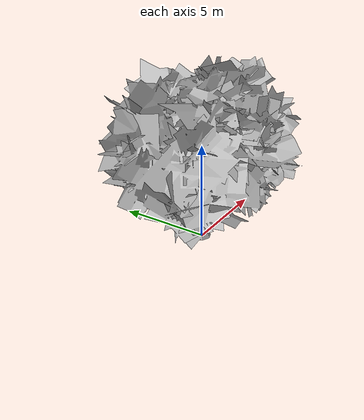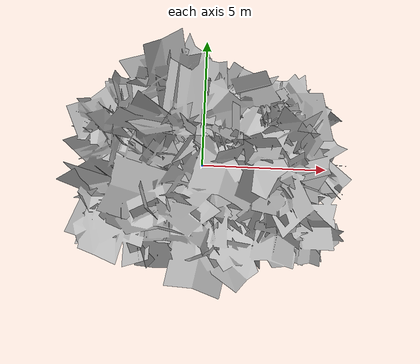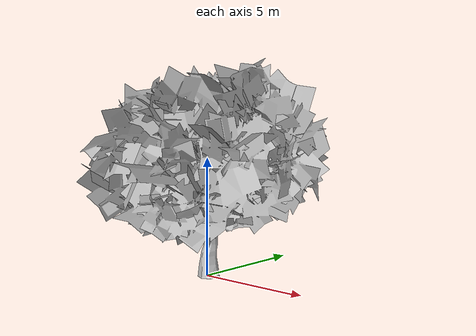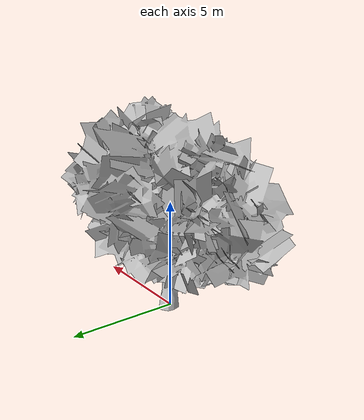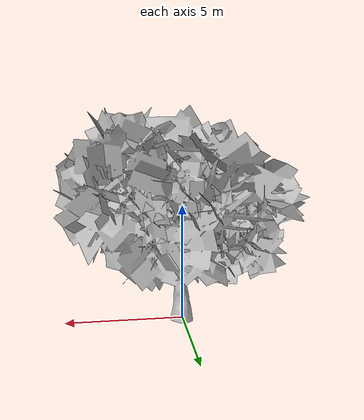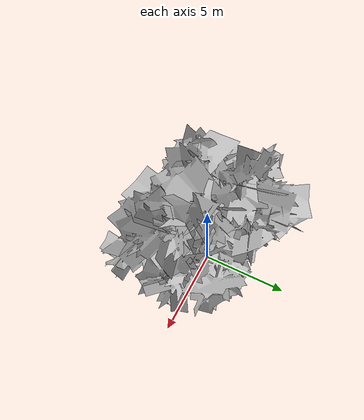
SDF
<?xml version='1.0'?>
<sdf version='1.4'>
  <model name="Tree_4">
    <static>true</static>
    <pose>0 0 0 0 0 0</pose>

    <link name="Tree_4">
      <visual name="Tree_4">
        <geometry>
          <mesh>
            <uri>model://Tree_4/Tree_4.dae</uri>
          </mesh>
        </geometry>
      </visual>
      <collision name="Tree_4">
        <geometry>
          <mesh>
            <uri>model://Tree_4/Tree_4.dae</uri>
          </mesh>
        </geometry>
      </collision>
    </link>

  </model>
</sdf>
